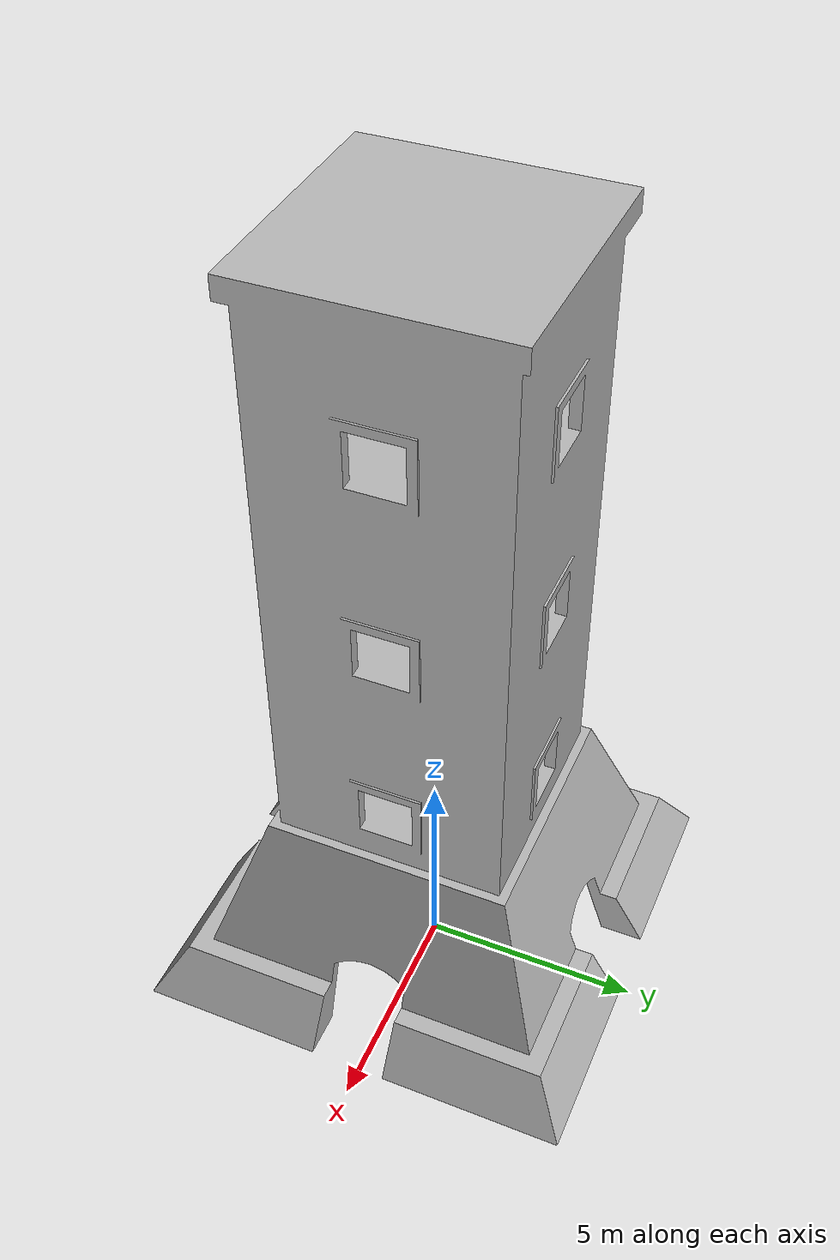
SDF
<?xml version="1.0" ?>
<sdf version="1.6">
  <model name="Tower">
    <pose>0 0 1 0 0 0</pose>
    <link name="link">
      <collision name="collision">
        <geometry>
          <mesh>
            <uri>model://Tower/meshes/tower_3.dae</uri>
          </mesh>
        </geometry>
      </collision>
      <visual name="visual">
        <geometry>
          <mesh>
            <uri>model://Tower/meshes/tower_3.dae</uri>
          </mesh>
        </geometry>
      </visual>
    </link>
  </model>
</sdf>
